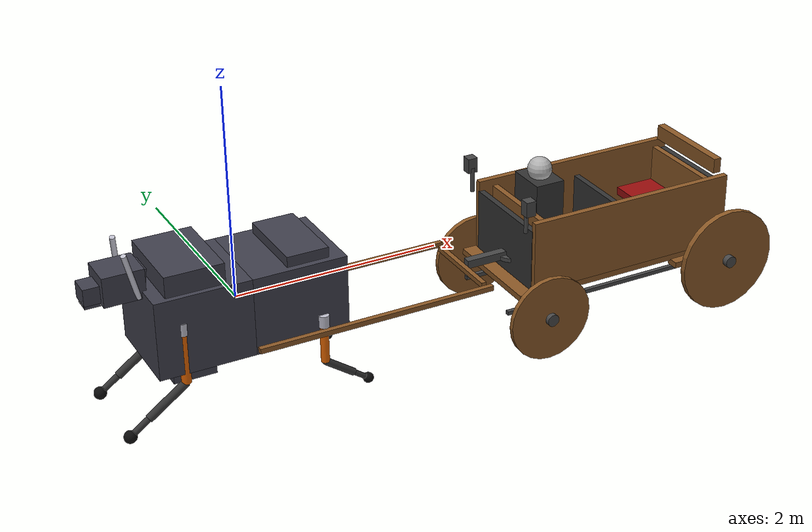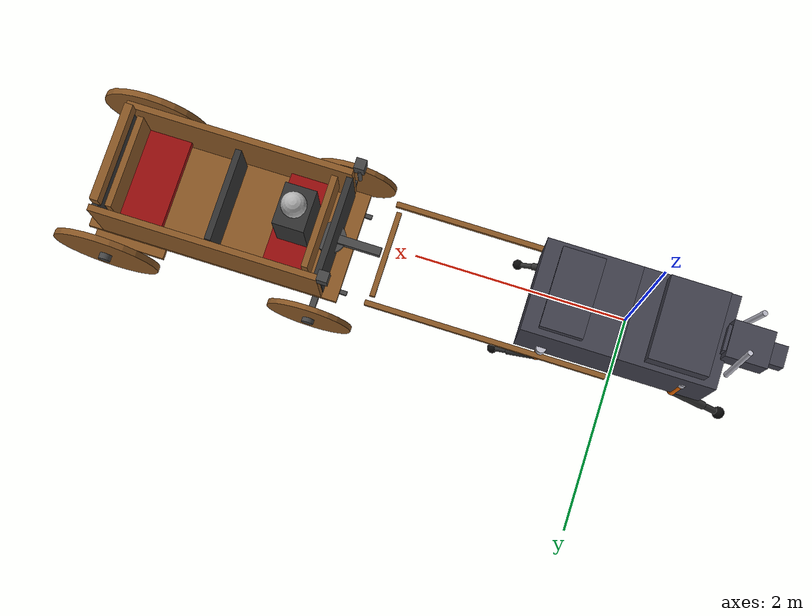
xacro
<?xml version="1.0"?>
<robot name="robotic_horse" xmlns:xacro="http://www.ros.org/wiki/xacro">

  <!-- ═══════════════════════════════════════════════════════
       MATERIALS
  ═══════════════════════════════════════════════════════ -->
  <material name="dark_grey">  <color rgba="0.20 0.20 0.20 1"/></material>
  <material name="orange">     <color rgba="0.90 0.40 0.00 1"/></material>
  <material name="light_grey"> <color rgba="0.70 0.70 0.70 1"/></material>
  <material name="black">      <color rgba="0.05 0.05 0.05 1"/></material>
  <material name="silver">     <color rgba="0.75 0.75 0.80 1"/></material>
  <material name="body_panel"> <color rgba="0.25 0.25 0.30 1"/></material>
  <material name="wood">       <color rgba="0.55 0.35 0.15 1"/></material>
  <material name="iron">       <color rgba="0.28 0.28 0.28 1"/></material>
  <material name="red_velvet"> <color rgba="0.60 0.05 0.05 1"/></material>

  <!-- IMU sensor on base_link — publishes body orientation for balance -->
  <gazebo reference="base_link">
    <sensor name="imu_sensor" type="imu">
      <always_on>true</always_on>
      <update_rate>100</update_rate>
      <topic>/imu/data</topic>
      <imu>
        <angular_velocity>
          <x><noise type="gaussian"><mean>0</mean><stddev>0.001</stddev></noise></x>
          <y><noise type="gaussian"><mean>0</mean><stddev>0.001</stddev></noise></y>
          <z><noise type="gaussian"><mean>0</mean><stddev>0.001</stddev></noise></z>
        </angular_velocity>
        <linear_acceleration>
          <x><noise type="gaussian"><mean>0</mean><stddev>0.01</stddev></noise></x>
          <y><noise type="gaussian"><mean>0</mean><stddev>0.01</stddev></noise></y>
          <z><noise type="gaussian"><mean>0</mean><stddev>0.01</stddev></noise></z>
        </linear_acceleration>
      </imu>
    </sensor>
  </gazebo>

  <!-- ═══════════════════════════════════════════════════════
       BASE LINK
  ═══════════════════════════════════════════════════════ -->
  <!-- base_link = REAR body half (haunches/lumbar).
       Rear legs (RL/RR) and carriage hitch attach here.
       IMU stays on base_link for balance sensing. -->
  <link name="base_link">
    <inertial>
      <mass value="48.0"/>
      <origin xyz="0.45 0 0" rpy="0 0 0"/>
      <inertia ixx="6.0" iyy="6.1" izz="6.3" ixy="0" ixz="0" iyz="0"/>
    </inertial>
    <!-- Rear barrel half -->
    <visual>
      <origin xyz="0.45 0 0" rpy="0 0 0"/>
      <geometry><box size="0.90 0.88 0.75"/></geometry>
      <material name="body_panel"/>
    </visual>
    <!-- Rump (back — at +X) -->
    <visual>
      <origin xyz="0.55 0 0.425" rpy="0 0 0"/>
      <geometry><box size="0.40 0.76 0.10"/></geometry>
      <material name="body_panel"/>
    </visual>

    <collision>
      <origin xyz="0.45 0 0" rpy="0 0 0"/>
      <geometry><box size="0.90 0.88 0.85"/></geometry>
    </collision>
  </link>
  <gazebo reference="base_link">
    <material>Gazebo/DarkGrey</material>
  </gazebo>

  <joint name="spine_yaw_joint" type="revolute">
    <parent link="base_link"/><child link="front_body_link"/>
    <origin xyz="0 0 0" rpy="0 0 0"/>
    <axis xyz="0 0 1"/>
    <limit lower="-0.30" upper="0.30" effort="500" velocity="1.5"/>
    <dynamics damping="12.0" friction="1.0"/>
  </joint>

  <!-- front_body_link = FRONT body half (thorax/shoulders).
       Front legs (FL/FR) and head/neck attach here.
       55% of body mass (bovine weight distribution). -->
  <link name="front_body_link">
    <inertial>
      <mass value="59.0"/>
      <origin xyz="-0.45 0 0" rpy="0 0 0"/>
      <inertia ixx="7.4" iyy="7.5" izz="7.8" ixy="0" ixz="0" iyz="0"/>
    </inertial>
    <!-- Front barrel half -->
    <visual>
      <origin xyz="-0.45 0 0" rpy="0 0 0"/>
      <geometry><box size="0.90 0.88 0.75"/></geometry>
      <material name="body_panel"/>
    </visual>
    <!-- Withers rise (front shoulder hump) -->
    <visual>
      <origin xyz="-0.50 0 0.475" rpy="0 0 0"/>
      <geometry><box size="0.55 0.78 0.20"/></geometry>
      <material name="body_panel"/>
    </visual>
    <!-- Chest extension (brisket, front-bottom) -->
    <visual>
      <origin xyz="-0.55 0 -0.435" rpy="0 0 0"/>
      <geometry><box size="0.40 0.72 0.12"/></geometry>
      <material name="body_panel"/>
    </visual>

    <collision>
      <origin xyz="-0.45 0 0" rpy="0 0 0"/>
      <geometry><box size="0.90 0.88 0.85"/></geometry>
    </collision>
  </link>
  <gazebo reference="front_body_link">
    <material>Gazebo/DarkGrey</material>
  </gazebo>

  <!-- ─── HIGHLAND COW HEAD (articulated) ───────────────────── -->
  <!-- Neck: yaw + pitch joints for head motion
       Head: jaw (open/close), eyes (left/right pan)
       Small servos — total head assembly ~6.5 kg
       Attached to front_body_link (thorax) -->

  <!-- Neck yaw — swivel left/right (head faces -X direction of travel) -->
  <link name="neck_yaw_link">
    <inertial><mass value="0.5"/><origin xyz="0 0 0" rpy="0 0 0"/>
      <inertia ixx="0.001" iyy="0.001" izz="0.001" ixy="0" ixz="0" iyz="0"/></inertial>
  </link>
  <joint name="neck_yaw_joint" type="revolute">
    <parent link="front_body_link"/><child link="neck_yaw_link"/>
    <origin xyz="-0.85 0 0.42" rpy="0 0 3.14159"/>
    <axis xyz="0 0 1"/>
    <limit lower="-0.6" upper="0.6" effort="15.0" velocity="2.0"/>
    <dynamics damping="2.0" friction="0.5"/>
  </joint>

  <!-- Neck pitch — nod up/down -->
  <link name="neck_link">
    <inertial><mass value="3.0"/><origin xyz="0.10 0 0" rpy="0 0 0"/>
      <inertia ixx="0.015" iyy="0.015" izz="0.008" ixy="0" ixz="0" iyz="0"/></inertial>
    <visual><origin xyz="0.10 0 0" rpy="0 0 0">
      </origin><geometry><box size="0.22 0.24 0.26"/></geometry><material name="body_panel"/></visual>
    <collision><origin xyz="0.10 0 0" rpy="0 0 0">
      </origin><geometry><box size="0.22 0.24 0.26"/></geometry></collision>
  </link>
  <joint name="neck_pitch_joint" type="revolute">
    <parent link="neck_yaw_link"/><child link="neck_link"/>
    <origin xyz="0 0 0" rpy="0 -0.10 0"/>
    <axis xyz="0 1 0"/>
    <limit lower="-0.5" upper="0.4" effort="20.0" velocity="2.0"/>
    <dynamics damping="3.0" friction="0.5"/>
  </joint>
  <gazebo reference="neck_link"><material>Gazebo/Brown</material></gazebo>

  <!-- Head link — skull, muzzle, nose, horns (same geometry as before) -->
  <link name="head_link">
    <inertial><mass value="2.0"/><origin xyz="0.15 0 0" rpy="0 0 0"/>
      <inertia ixx="0.016" iyy="0.018" izz="0.013" ixy="0" ixz="0" iyz="0"/></inertial>
    <!-- Skull — broad Highland Cow head -->
    <visual><origin xyz="0 0 0" rpy="0 0 0">
      </origin><geometry><box size="0.38 0.34 0.28"/></geometry><material name="body_panel"/></visual>
    <!-- Muzzle extending forward -->
    <visual><origin xyz="0.25 0 -0.04" rpy="0 0 0">
      </origin><geometry><box size="0.18 0.20 0.16"/></geometry><material name="body_panel"/></visual>
    <!-- LEFT horn: wide sweep outward + slight upward curl — iconic Highland Cow -->
    <visual><origin xyz="-0.06 0.20 0.11" rpy="0.20 0.25 1.30">
      </origin><geometry><cylinder radius="0.025" length="0.50"/></geometry><material name="silver"/></visual>
    <!-- RIGHT horn -->
    <visual><origin xyz="-0.06 -0.20 0.11" rpy="-0.20 -0.25 -1.30">
      </origin><geometry><cylinder radius="0.025" length="0.50"/></geometry><material name="silver"/></visual>
    <collision><origin xyz="0.10 0 0" rpy="0 0 0">
      </origin><geometry><box size="0.60 0.34 0.30"/></geometry></collision>
  </link>
  <joint name="head_nod_joint" type="revolute">
    <parent link="neck_link"/><child link="head_link"/>
    <origin xyz="0.20 0 0" rpy="0 0.10 0"/>
    <axis xyz="0 1 0"/>
    <limit lower="-0.3" upper="0.3" effort="8.0" velocity="3.0"/>
    <dynamics damping="1.0" friction="0.3"/>
  </joint>
  <gazebo reference="head_link"><material>Gazebo/Brown</material></gazebo>

  <!-- Jaw — opens downward (mouth) -->
  <link name="jaw_link">
    <inertial><mass value="0.3"/><origin xyz="0.06 0 -0.03" rpy="0 0 0"/>
      <inertia ixx="0.0003" iyy="0.0004" izz="0.0003" ixy="0" ixz="0" iyz="0"/></inertial>
    <visual><origin xyz="0.06 0 -0.03" rpy="0 0 0">
      </origin><geometry><box size="0.14 0.16 0.06"/></geometry><material name="body_panel"/></visual>
    <!-- Nose on jaw -->
    <visual><origin xyz="0.12 0 -0.01" rpy="0 0 0">
      </origin><geometry><box size="0.04 0.10 0.05"/></geometry><material name="black"/></visual>
    <collision><origin xyz="0.06 0 -0.03" rpy="0 0 0">
      </origin><geometry><box size="0.14 0.16 0.06"/></geometry></collision>
  </link>
  <joint name="jaw_joint" type="revolute">
    <parent link="head_link"/><child link="jaw_link"/>
    <origin xyz="0.20 0 -0.10" rpy="0 0 0"/>
    <axis xyz="0 1 0"/>
    <limit lower="-0.35" upper="0.0" effort="3.0" velocity="4.0"/>
    <dynamics damping="0.5" friction="0.1"/>
  </joint>
  <gazebo reference="jaw_link"><material>Gazebo/Brown</material></gazebo>

  <!-- Left eye -->
  <link name="left_eye_link">
    <inertial><mass value="0.05"/><origin xyz="0 0 0" rpy="0 0 0"/>
      <inertia ixx="0.00001" iyy="0.00001" izz="0.00001" ixy="0" ixz="0" iyz="0"/></inertial>
    <visual><origin xyz="0 0 0" rpy="0 0 0">
      </origin><geometry><sphere radius="0.025"/></geometry><material name="black"/></visual>
  </link>
  <joint name="left_eye_joint" type="revolute">
    <parent link="head_link"/><child link="left_eye_link"/>
    <origin xyz="0.14 0.14 0.04" rpy="0 0 0"/>
    <axis xyz="0 0 1"/>
    <limit lower="-0.4" upper="0.4" effort="1.0" velocity="5.0"/>
    <dynamics damping="0.1" friction="0.05"/>
  </joint>
  <gazebo reference="left_eye_link"><material>Gazebo/Black</material></gazebo>

  <!-- Right eye -->
  <link name="right_eye_link">
    <inertial><mass value="0.05"/><origin xyz="0 0 0" rpy="0 0 0"/>
      <inertia ixx="0.00001" iyy="0.00001" izz="0.00001" ixy="0" ixz="0" iyz="0"/></inertial>
    <visual><origin xyz="0 0 0" rpy="0 0 0">
      </origin><geometry><sphere radius="0.025"/></geometry><material name="black"/></visual>
  </link>
  <joint name="right_eye_joint" type="revolute">
    <parent link="head_link"/><child link="right_eye_link"/>
    <origin xyz="0.14 -0.14 0.04" rpy="0 0 0"/>
    <axis xyz="0 0 1"/>
    <limit lower="-0.4" upper="0.4" effort="1.0" velocity="5.0"/>
    <dynamics damping="0.1" friction="0.05"/>
  </joint>
  <gazebo reference="right_eye_link"><material>Gazebo/Black</material></gazebo>

  <!-- Left eyelid (blink) -->
  <link name="left_eyelid_link">
    <inertial><mass value="0.02"/><origin xyz="0 0 0" rpy="0 0 0"/>
      <inertia ixx="0.000001" iyy="0.000001" izz="0.000001" ixy="0" ixz="0" iyz="0"/></inertial>
    <visual><origin xyz="0.005 0 0.012" rpy="0 0 0">
      </origin><geometry><box size="0.01 0.05 0.025"/></geometry><material name="body_panel"/></visual>
  </link>
  <joint name="left_eyelid_joint" type="revolute">
    <parent link="head_link"/><child link="left_eyelid_link"/>
    <origin xyz="0.16 0.14 0.06" rpy="0 0 0"/>
    <axis xyz="0 1 0"/>
    <limit lower="-0.8" upper="0.0" effort="0.5" velocity="8.0"/>
    <dynamics damping="0.05" friction="0.02"/>
  </joint>
  <gazebo reference="left_eyelid_link"><material>Gazebo/Brown</material></gazebo>

  <!-- Right eyelid (blink) -->
  <link name="right_eyelid_link">
    <inertial><mass value="0.02"/><origin xyz="0 0 0" rpy="0 0 0"/>
      <inertia ixx="0.000001" iyy="0.000001" izz="0.000001" ixy="0" ixz="0" iyz="0"/></inertial>
    <visual><origin xyz="0.005 0 0.012" rpy="0 0 0">
      </origin><geometry><box size="0.01 0.05 0.025"/></geometry><material name="body_panel"/></visual>
  </link>
  <joint name="right_eyelid_joint" type="revolute">
    <parent link="head_link"/><child link="right_eyelid_link"/>
    <origin xyz="0.16 -0.14 0.06" rpy="0 0 0"/>
    <axis xyz="0 1 0"/>
    <limit lower="-0.8" upper="0.0" effort="0.5" velocity="8.0"/>
    <dynamics damping="0.05" friction="0.02"/>
  </joint>
  <gazebo reference="right_eyelid_link"><material>Gazebo/Brown</material></gazebo>

  <!-- ═══════════════════════════════════════════════════════
       LEG LINKS & JOINTS  (macro-expanded for FL/FR/RL/RR)
  ═══════════════════════════════════════════════════════ -->

  <!-- ── FRONT-LEFT ── -->
  <link name="fl_hip_link">
    <inertial><mass value="4.0"/><origin xyz="0 0 0" rpy="0 0 0"/>
      <inertia ixx="0.012" iyy="0.012" izz="0.007" ixy="0" ixz="0" iyz="0"/></inertial>
    <visual><origin xyz="0 0 -0.06" rpy="0 0 0"/>
      <geometry><cylinder radius="0.05" length="0.12"/></geometry><material name="silver"/></visual>
    <collision><origin xyz="0 0 -0.07" rpy="0 0 0"/>
      <geometry><cylinder radius="0.04" length="0.10"/></geometry></collision>
  </link>
  <joint name="fl_hip_joint" type="revolute">
    <parent link="front_body_link"/><child link="fl_hip_link"/>
    <origin xyz="0.65 0.44 -0.15" rpy="0 0 0"/>
    <axis xyz="0 0 1"/>
    <limit lower="-0.35" upper="0.35" effort="300" velocity="2.0"/>
    <dynamics damping="4.0" friction="0.5"/>
  </joint>
  <gazebo reference="fl_hip_link"><material>Gazebo/Grey</material></gazebo>

  <link name="fl_thigh_link">
    <inertial><mass value="4.0"/><origin xyz="0 0 -0.19" rpy="0 0 0"/>
      <inertia ixx="0.0496" iyy="0.0496" izz="0.0032" ixy="0" ixz="0" iyz="0"/></inertial>
    <visual><origin xyz="0 0 -0.19" rpy="0 0 0"/>
      <geometry><cylinder radius="0.04" length="0.38"/></geometry><material name="orange"/></visual>
    <collision><origin xyz="0 0 -0.19" rpy="0 0 0">
      </origin><geometry><cylinder radius="0.04" length="0.38"/></geometry></collision>
  </link>
  <joint name="fl_thigh_joint" type="revolute">
    <parent link="fl_hip_link"/><child link="fl_thigh_link"/>
    <origin xyz="0 0 -0.10" rpy="0 0 0"/><axis xyz="0 1 0"/>
    <limit lower="-0.30" upper="1.20" effort="800" velocity="3.0"/>
    <dynamics damping="5.0" friction="0.5"/>
  </joint>
  <gazebo reference="fl_thigh_link"><material>Gazebo/Orange</material></gazebo>

  <link name="fl_shank_link">
    <inertial><mass value="3.5"/><origin xyz="0 0 -0.17" rpy="0 0 0"/>
      <inertia ixx="0.0348" iyy="0.0348" izz="0.0021" ixy="0" ixz="0" iyz="0"/></inertial>
    <visual><origin xyz="0 0 -0.17" rpy="0 0 0">
      </origin><geometry><cylinder radius="0.035" length="0.34"/></geometry><material name="dark_grey"/></visual>
    <collision><origin xyz="0 0 -0.17" rpy="0 0 0">
      </origin><geometry><cylinder radius="0.035" length="0.34"/></geometry></collision>
  </link>
  <joint name="fl_knee_joint" type="revolute">
    <parent link="fl_thigh_link"/><child link="fl_shank_link"/>
    <origin xyz="0 0 -0.38" rpy="0 0 0"/><axis xyz="0 1 0"/>
    <limit lower="-1.80" upper="-0.10" effort="1200" velocity="5.0"/>
    <dynamics damping="6.0" friction="0.5"/>
  </joint>
  <gazebo reference="fl_shank_link"><material>Gazebo/DarkGrey</material></gazebo>

  <!-- Cannon bone (metatarsal/metacarpal): pantograph-kept near vertical -->
  <link name="fl_cannon_link">
    <inertial><mass value="1.0"/><origin xyz="0 0 -0.09" rpy="0 0 0"/>
      <inertia ixx="0.0028" iyy="0.0028" izz="0.0003" ixy="0" ixz="0" iyz="0"/></inertial>
    <visual><origin xyz="0 0 -0.09" rpy="0 0 0"/>
      <geometry><cylinder radius="0.025" length="0.18"/></geometry><material name="dark_grey"/></visual>
    <collision><origin xyz="0 0 -0.09" rpy="0 0 0"/>
      <geometry><cylinder radius="0.025" length="0.18"/></geometry></collision>
  </link>
  <joint name="fl_cannon_joint" type="revolute">
    <parent link="fl_shank_link"/><child link="fl_cannon_link"/>
    <origin xyz="0 0 -0.34" rpy="0 0 0"/><axis xyz="0 1 0"/>
    <limit lower="-2.0" upper="2.0" effort="200" velocity="6.0"/>
    <dynamics damping="2.0" friction="0.2"/>
  </joint>
  <gazebo reference="fl_cannon_link"><material>Gazebo/DarkGrey</material></gazebo>

    <link name="fl_foot_link">
    <inertial><mass value="0.4"/><origin xyz="0 0 0" rpy="0 0 0"/>
      <inertia ixx="0.00040" iyy="0.00040" izz="0.00040" ixy="0" ixz="0" iyz="0"/></inertial>
    <visual><origin xyz="0 0 0" rpy="0 0 0"/>
      <geometry><sphere radius="0.05"/></geometry><material name="black"/></visual>
    <collision><origin xyz="0 0 0" rpy="0 0 0"/>
      <geometry><sphere radius="0.05"/></geometry></collision>
  </link>
  <joint name="fl_foot_joint" type="fixed">
    <parent link="fl_cannon_link"/><child link="fl_foot_link"/>
    <origin xyz="0 0 -0.18" rpy="0 0 0"/>
  </joint>
  <gazebo reference="fl_foot_link">
    <material>Gazebo/FlatBlack</material>
    <kp>1000000.0</kp><kd>200.0</kd>
    <mu1>2.0</mu1><mu2>2.0</mu2>
    <minDepth>0.005</minDepth>
  </gazebo>

  <!-- ── FRONT-RIGHT ── -->
  <link name="fr_hip_link">
    <inertial><mass value="4.0"/><origin xyz="0 0 0" rpy="0 0 0"/>
      <inertia ixx="0.012" iyy="0.012" izz="0.007" ixy="0" ixz="0" iyz="0"/></inertial>
    <visual><origin xyz="0 0 -0.06" rpy="0 0 0"/>
      <geometry><cylinder radius="0.05" length="0.12"/></geometry><material name="silver"/></visual>
    <collision><origin xyz="0 0 -0.05" rpy="0 0 0">
      </origin><geometry><cylinder radius="0.04" length="0.10"/></geometry></collision>
  </link>
  <joint name="fr_hip_joint" type="revolute">
    <parent link="front_body_link"/><child link="fr_hip_link"/>
    <origin xyz="0.65 -0.44 -0.15" rpy="0 0 0"/>
    <axis xyz="0 0 1"/>
    <limit lower="-0.35" upper="0.35" effort="300" velocity="2.0"/>
    <dynamics damping="4.0" friction="0.5"/>
  </joint>
  <gazebo reference="fr_hip_link"><material>Gazebo/Grey</material></gazebo>
  <link name="fr_thigh_link">
    <inertial><mass value="4.0"/><origin xyz="0 0 -0.19" rpy="0 0 0"/>
      <inertia ixx="0.0496" iyy="0.0496" izz="0.0032" ixy="0" ixz="0" iyz="0"/></inertial>
    <visual><origin xyz="0 0 -0.19" rpy="0 0 0"/>
      <geometry><cylinder radius="0.04" length="0.38"/></geometry><material name="orange"/></visual>
    <collision><origin xyz="0 0 -0.19" rpy="0 0 0">
      </origin><geometry><cylinder radius="0.04" length="0.38"/></geometry></collision>
  </link>
  <joint name="fr_thigh_joint" type="revolute">
    <parent link="fr_hip_link"/><child link="fr_thigh_link"/>
    <origin xyz="0 0 -0.10" rpy="0 0 0"/><axis xyz="0 1 0"/>
    <limit lower="-0.30" upper="1.20" effort="800" velocity="3.0"/>
    <dynamics damping="5.0" friction="0.5"/>
  </joint>
  <gazebo reference="fr_thigh_link"><material>Gazebo/Orange</material></gazebo>
  <link name="fr_shank_link">
    <inertial><mass value="3.5"/><origin xyz="0 0 -0.17" rpy="0 0 0"/>
      <inertia ixx="0.0348" iyy="0.0348" izz="0.0021" ixy="0" ixz="0" iyz="0"/></inertial>
    <visual><origin xyz="0 0 -0.17" rpy="0 0 0">
      </origin><geometry><cylinder radius="0.035" length="0.34"/></geometry><material name="dark_grey"/></visual>
    <collision><origin xyz="0 0 -0.17" rpy="0 0 0">
      </origin><geometry><cylinder radius="0.035" length="0.34"/></geometry></collision>
  </link>
  <joint name="fr_knee_joint" type="revolute">
    <parent link="fr_thigh_link"/><child link="fr_shank_link"/>
    <origin xyz="0 0 -0.38" rpy="0 0 0"/><axis xyz="0 1 0"/>
    <limit lower="-1.80" upper="-0.10" effort="1200" velocity="5.0"/>
    <dynamics damping="6.0" friction="0.5"/>
  </joint>
  <gazebo reference="fr_shank_link"><material>Gazebo/DarkGrey</material></gazebo>
  <!-- Cannon bone (metatarsal/metacarpal): pantograph-kept near vertical -->
  <link name="fr_cannon_link">
    <inertial><mass value="1.0"/><origin xyz="0 0 -0.09" rpy="0 0 0"/>
      <inertia ixx="0.0028" iyy="0.0028" izz="0.0003" ixy="0" ixz="0" iyz="0"/></inertial>
    <visual><origin xyz="0 0 -0.09" rpy="0 0 0"/>
      <geometry><cylinder radius="0.025" length="0.18"/></geometry><material name="dark_grey"/></visual>
    <collision><origin xyz="0 0 -0.09" rpy="0 0 0"/>
      <geometry><cylinder radius="0.025" length="0.18"/></geometry></collision>
  </link>
  <joint name="fr_cannon_joint" type="revolute">
    <parent link="fr_shank_link"/><child link="fr_cannon_link"/>
    <origin xyz="0 0 -0.34" rpy="0 0 0"/><axis xyz="0 1 0"/>
    <limit lower="-2.0" upper="2.0" effort="200" velocity="6.0"/>
    <dynamics damping="2.0" friction="0.2"/>
  </joint>
  <gazebo reference="fr_cannon_link"><material>Gazebo/DarkGrey</material></gazebo>

    <link name="fr_foot_link">
    <inertial><mass value="0.4"/><origin xyz="0 0 0" rpy="0 0 0"/>
      <inertia ixx="0.00040" iyy="0.00040" izz="0.00040" ixy="0" ixz="0" iyz="0"/></inertial>
    <visual><origin xyz="0 0 0" rpy="0 0 0"/>
      <geometry><sphere radius="0.05"/></geometry><material name="black"/></visual>
    <collision><origin xyz="0 0 0" rpy="0 0 0"/>
      <geometry><sphere radius="0.05"/></geometry></collision>
  </link>
  <joint name="fr_foot_joint" type="fixed">
    <parent link="fr_cannon_link"/><child link="fr_foot_link"/>
    <origin xyz="0 0 -0.18" rpy="0 0 0"/>
  </joint>
  <gazebo reference="fr_foot_link">
    <material>Gazebo/FlatBlack</material>
    <kp>1000000.0</kp><kd>200.0</kd>
    <mu1>2.0</mu1><mu2>2.0</mu2>
    <minDepth>0.005</minDepth>
  </gazebo>

  <!-- ── REAR-LEFT ── -->
  <link name="rl_hip_link">
    <inertial><mass value="4.0"/><origin xyz="0 0 0" rpy="0 0 0"/>
      <inertia ixx="0.012" iyy="0.012" izz="0.007" ixy="0" ixz="0" iyz="0"/></inertial>
    <visual><origin xyz="0 0 -0.06" rpy="0 0 0"/>
      <geometry><cylinder radius="0.05" length="0.12"/></geometry><material name="silver"/></visual>
    <collision><origin xyz="0 0 -0.05" rpy="0 0 0">
      </origin><geometry><cylinder radius="0.04" length="0.10"/></geometry></collision>
  </link>
  <joint name="rl_hip_joint" type="revolute">
    <parent link="base_link"/><child link="rl_hip_link"/>
    <origin xyz="-0.65 0.40 0.12" rpy="0 0 0"/>
    <axis xyz="0 0 1"/>
    <limit lower="-0.35" upper="0.35" effort="250" velocity="2.0"/>
    <dynamics damping="3.5" friction="0.4"/>
  </joint>
  <gazebo reference="rl_hip_link"><material>Gazebo/Grey</material></gazebo>
  <link name="rl_thigh_link">
    <inertial><mass value="5.0"/><origin xyz="0 0 -0.25" rpy="0 0 0"/>
      <inertia ixx="0.1068" iyy="0.1068" izz="0.0051" ixy="0" ixz="0" iyz="0"/></inertial>
    <visual><origin xyz="0 0 -0.25" rpy="0 0 0">
      </origin><geometry><cylinder radius="0.045" length="0.50"/></geometry><material name="orange"/></visual>
    <collision><origin xyz="0 0 -0.25" rpy="0 0 0">
      </origin><geometry><cylinder radius="0.045" length="0.50"/></geometry></collision>
  </link>
  <joint name="rl_thigh_joint" type="revolute">
    <parent link="rl_hip_link"/><child link="rl_thigh_link"/>
    <origin xyz="0 0 -0.10" rpy="0 0 0"/><axis xyz="0 1 0"/>
    <limit lower="-1.20" upper="0.30" effort="700" velocity="3.0"/>
    <dynamics damping="4.5" friction="0.4"/>
  </joint>
  <gazebo reference="rl_thigh_link"><material>Gazebo/Orange</material></gazebo>
  <link name="rl_shank_link">
    <inertial><mass value="4.0"/><origin xyz="0 0 -0.225" rpy="0 0 0"/>
      <inertia ixx="0.0695" iyy="0.0695" izz="0.0032" ixy="0" ixz="0" iyz="0"/></inertial>
    <visual><origin xyz="0 0 -0.225" rpy="0 0 0">
      </origin><geometry><cylinder radius="0.04" length="0.45"/></geometry><material name="dark_grey"/></visual>
    <collision><origin xyz="0 0 -0.225" rpy="0 0 0">
      </origin><geometry><cylinder radius="0.04" length="0.45"/></geometry></collision>
  </link>
  <joint name="rl_knee_joint" type="revolute">
    <parent link="rl_thigh_link"/><child link="rl_shank_link"/>
    <origin xyz="0 0 -0.50" rpy="0 0 0"/><axis xyz="0 1 0"/>
    <limit lower="0.10" upper="1.80" effort="1000" velocity="5.0"/>
    <dynamics damping="5.0" friction="0.4"/>
  </joint>
  <gazebo reference="rl_shank_link"><material>Gazebo/DarkGrey</material></gazebo>
  <!-- Cannon bone (metatarsal/metacarpal): pantograph-kept near vertical -->
  <link name="rl_cannon_link">
    <inertial><mass value="1.2"/><origin xyz="0 0 -0.11" rpy="0 0 0"/>
      <inertia ixx="0.0049" iyy="0.0049" izz="0.0005" ixy="0" ixz="0" iyz="0"/></inertial>
    <visual><origin xyz="0 0 -0.11" rpy="0 0 0"/>
      <geometry><cylinder radius="0.03" length="0.22"/></geometry><material name="dark_grey"/></visual>
    <collision><origin xyz="0 0 -0.11" rpy="0 0 0"/>
      <geometry><cylinder radius="0.03" length="0.22"/></geometry></collision>
  </link>
  <joint name="rl_cannon_joint" type="revolute">
    <parent link="rl_shank_link"/><child link="rl_cannon_link"/>
    <origin xyz="0 0 -0.45" rpy="0 0 0"/><axis xyz="0 1 0"/>
    <limit lower="-2.0" upper="2.0" effort="150" velocity="6.0"/>
    <dynamics damping="1.5" friction="0.2"/>
  </joint>
  <gazebo reference="rl_cannon_link"><material>Gazebo/DarkGrey</material></gazebo>

    <link name="rl_foot_link">
    <inertial><mass value="0.5"/><origin xyz="0 0 0" rpy="0 0 0"/>
      <inertia ixx="0.00072" iyy="0.00072" izz="0.00072" ixy="0" ixz="0" iyz="0"/></inertial>
    <visual><origin xyz="0 0 0" rpy="0 0 0"/>
      <geometry><sphere radius="0.06"/></geometry><material name="black"/></visual>
    <collision><origin xyz="0 0 0" rpy="0 0 0"/>
      <geometry><sphere radius="0.06"/></geometry></collision>
  </link>
  <joint name="rl_foot_joint" type="fixed">
    <parent link="rl_cannon_link"/><child link="rl_foot_link"/>
    <origin xyz="0 0 -0.22" rpy="0 0 0"/>
  </joint>
  <gazebo reference="rl_foot_link">
    <material>Gazebo/FlatBlack</material>
    <kp>1000000.0</kp><kd>200.0</kd>
    <mu1>2.0</mu1><mu2>2.0</mu2>
    <minDepth>0.005</minDepth>
  </gazebo>

  <!-- ── REAR-RIGHT ── -->
  <link name="rr_hip_link">
    <inertial><mass value="4.0"/><origin xyz="0 0 0" rpy="0 0 0"/>
      <inertia ixx="0.012" iyy="0.012" izz="0.007" ixy="0" ixz="0" iyz="0"/></inertial>
    <visual><origin xyz="0 0 -0.06" rpy="0 0 0"/>
      <geometry><cylinder radius="0.05" length="0.12"/></geometry><material name="silver"/></visual>
    <collision><origin xyz="0 0 -0.05" rpy="0 0 0">
      </origin><geometry><cylinder radius="0.04" length="0.10"/></geometry></collision>
  </link>
  <joint name="rr_hip_joint" type="revolute">
    <parent link="base_link"/><child link="rr_hip_link"/>
    <origin xyz="-0.65 -0.40 0.12" rpy="0 0 0"/>
    <axis xyz="0 0 1"/>
    <limit lower="-0.35" upper="0.35" effort="250" velocity="2.0"/>
    <dynamics damping="3.5" friction="0.4"/>
  </joint>
  <gazebo reference="rr_hip_link"><material>Gazebo/Grey</material></gazebo>
  <link name="rr_thigh_link">
    <inertial><mass value="5.0"/><origin xyz="0 0 -0.25" rpy="0 0 0"/>
      <inertia ixx="0.1068" iyy="0.1068" izz="0.0051" ixy="0" ixz="0" iyz="0"/></inertial>
    <visual><origin xyz="0 0 -0.25" rpy="0 0 0">
      </origin><geometry><cylinder radius="0.045" length="0.50"/></geometry><material name="orange"/></visual>
    <collision><origin xyz="0 0 -0.25" rpy="0 0 0">
      </origin><geometry><cylinder radius="0.045" length="0.50"/></geometry></collision>
  </link>
  <joint name="rr_thigh_joint" type="revolute">
    <parent link="rr_hip_link"/><child link="rr_thigh_link"/>
    <origin xyz="0 0 -0.10" rpy="0 0 0"/><axis xyz="0 1 0"/>
    <limit lower="-1.20" upper="0.30" effort="700" velocity="3.0"/>
    <dynamics damping="4.5" friction="0.4"/>
  </joint>
  <gazebo reference="rr_thigh_link"><material>Gazebo/Orange</material></gazebo>
  <link name="rr_shank_link">
    <inertial><mass value="4.0"/><origin xyz="0 0 -0.225" rpy="0 0 0"/>
      <inertia ixx="0.0695" iyy="0.0695" izz="0.0032" ixy="0" ixz="0" iyz="0"/></inertial>
    <visual><origin xyz="0 0 -0.225" rpy="0 0 0">
      </origin><geometry><cylinder radius="0.04" length="0.45"/></geometry><material name="dark_grey"/></visual>
    <collision><origin xyz="0 0 -0.225" rpy="0 0 0">
      </origin><geometry><cylinder radius="0.04" length="0.45"/></geometry></collision>
  </link>
  <joint name="rr_knee_joint" type="revolute">
    <parent link="rr_thigh_link"/><child link="rr_shank_link"/>
    <origin xyz="0 0 -0.50" rpy="0 0 0"/><axis xyz="0 1 0"/>
    <limit lower="0.10" upper="1.80" effort="1000" velocity="5.0"/>
    <dynamics damping="5.0" friction="0.4"/>
  </joint>
  <gazebo reference="rr_shank_link"><material>Gazebo/DarkGrey</material></gazebo>
  <!-- Cannon bone (metatarsal/metacarpal): pantograph-kept near vertical -->
  <link name="rr_cannon_link">
    <inertial><mass value="1.2"/><origin xyz="0 0 -0.11" rpy="0 0 0"/>
      <inertia ixx="0.0049" iyy="0.0049" izz="0.0005" ixy="0" ixz="0" iyz="0"/></inertial>
    <visual><origin xyz="0 0 -0.11" rpy="0 0 0"/>
      <geometry><cylinder radius="0.03" length="0.22"/></geometry><material name="dark_grey"/></visual>
    <collision><origin xyz="0 0 -0.11" rpy="0 0 0"/>
      <geometry><cylinder radius="0.03" length="0.22"/></geometry></collision>
  </link>
  <joint name="rr_cannon_joint" type="revolute">
    <parent link="rr_shank_link"/><child link="rr_cannon_link"/>
    <origin xyz="0 0 -0.45" rpy="0 0 0"/><axis xyz="0 1 0"/>
    <limit lower="-2.0" upper="2.0" effort="150" velocity="6.0"/>
    <dynamics damping="1.5" friction="0.2"/>
  </joint>
  <gazebo reference="rr_cannon_link"><material>Gazebo/DarkGrey</material></gazebo>

    <link name="rr_foot_link">
    <inertial><mass value="0.5"/><origin xyz="0 0 0" rpy="0 0 0"/>
      <inertia ixx="0.00072" iyy="0.00072" izz="0.00072" ixy="0" ixz="0" iyz="0"/></inertial>
    <visual><origin xyz="0 0 0" rpy="0 0 0"/>
      <geometry><sphere radius="0.06"/></geometry><material name="black"/></visual>
    <collision><origin xyz="0 0 0" rpy="0 0 0"/>
      <geometry><sphere radius="0.06"/></geometry></collision>
  </link>
  <joint name="rr_foot_joint" type="fixed">
    <parent link="rr_cannon_link"/><child link="rr_foot_link"/>
    <origin xyz="0 0 -0.22" rpy="0 0 0"/>
  </joint>
  <gazebo reference="rr_foot_link">
    <material>Gazebo/FlatBlack</material>
    <kp>1000000.0</kp><kd>200.0</kd>
    <mu1>2.0</mu1><mu2>2.0</mu2>
    <minDepth>0.005</minDepth>
  </gazebo>

  <!-- Cow-side hitch — pitch only (up/down in forward direction)
       Like a real carriage hitch pivot: shaft can tilt up/down but
       does not yaw or roll relative to the cow body. -->
  <joint name="cow_hitch_pitch_joint" type="revolute">
    <parent link="base_link"/><child link="shaft_link"/>
    <origin xyz="0.0 0 -0.30" rpy="0 0 0"/>
    <axis xyz="0 1 0"/>
    <limit lower="-0.35" upper="0.35" effort="0" velocity="2.0"/>
    <dynamics damping="1.0" friction="0.1"/>
  </joint>

  <!-- Shaft — U-shaped wooden fork, 2.35m long, extending in +X (behind robot)
       Bars at ±0.50m (1.0m apart) to clear 0.88m body width -->
  <link name="shaft_link">
    <inertial><mass value="15.0"/><origin xyz="1.175 0 0" rpy="0 0 0"/>
      <inertia ixx="0.15" iyy="6.93" izz="7.00" ixy="0" ixz="0" iyz="0"/></inertial>
    <!-- Left shaft bar -->
    <visual><origin xyz="1.175 0.50 0" rpy="0 0 0"/>
      <geometry><box size="2.35 0.05 0.05"/></geometry><material name="wood"/></visual>
    <collision><origin xyz="1.175 0.50 0" rpy="0 0 0"/>
      <geometry><box size="2.35 0.05 0.05"/></geometry></collision>
    <!-- Right shaft bar -->
    <visual><origin xyz="1.175 -0.50 0" rpy="0 0 0"/>
      <geometry><box size="2.35 0.05 0.05"/></geometry><material name="wood"/></visual>
    <collision><origin xyz="1.175 -0.50 0" rpy="0 0 0"/>
      <geometry><box size="2.35 0.05 0.05"/></geometry></collision>
    <!-- Cross piece at carriage end (tapers to ~0.85m) -->
    <visual><origin xyz="2.30 0 0" rpy="0 0 0"/>
      <geometry><box size="0.05 0.85 0.05"/></geometry><material name="wood"/></visual>
    <collision><origin xyz="2.30 0 0" rpy="0 0 0"/>
      <geometry><box size="0.05 0.85 0.05"/></geometry></collision>
  </link>

  <!-- Perch pitch joint — pivot at front of front axle assembly
       Moderate damping: allows free pitch motion over bumps without oscillation. -->
  <joint name="perch_pitch_joint" type="revolute">
    <parent link="shaft_link"/><child link="front_assembly_link"/>
    <origin xyz="2.35 0 0.015" rpy="0 0 0"/>
    <axis xyz="0 1 0"/>
    <limit lower="-0.35" upper="0.35" effort="0" velocity="2.0"/>
    <dynamics damping="1.5" friction="0.2"/>
  </joint>

  <!-- Front assembly (perch beam + front axle + turntable pin) ~8 kg -->
  <link name="front_assembly_link">
    <inertial><mass value="8.0"/><origin xyz="0.25 0 -0.15" rpy="0 0 0"/>
      <inertia ixx="0.20" iyy="0.10" izz="0.25" ixy="0" ixz="0" iyz="0"/></inertial>
    <!-- Perch beam (shaft-to-axle connection) -->
    <visual><origin xyz="0.25 0 0" rpy="0 0 0"/>
      <geometry><box size="0.50 0.08 0.08"/></geometry><material name="iron"/></visual>
    <collision><origin xyz="0.25 0 0" rpy="0 0 0"/>
      <geometry><box size="0.50 0.08 0.08"/></geometry></collision>
    <!-- Front axle bar -->
    <visual><origin xyz="0.50 0 -0.37" rpy="0 0 0"/>
      <geometry><box size="0.06 1.40 0.06"/></geometry><material name="iron"/></visual>
    <collision><origin xyz="0.50 0 -0.37" rpy="0 0 0"/>
      <geometry><box size="0.06 1.40 0.06"/></geometry></collision>
    <!-- Turntable circle (fifth-wheel plate) -->
    <visual><origin xyz="0.50 0 -0.02" rpy="0 0 0"/>
      <geometry><cylinder radius="0.15" length="0.04"/></geometry><material name="iron"/></visual>
    <collision><origin xyz="0.50 0 -0.02" rpy="0 0 0"/>
      <geometry><cylinder radius="0.15" length="0.04"/></geometry></collision>
  </link>

  <!-- ── Front-Left Wheel (⌀85cm) — on front assembly ── -->
  <joint name="cart_fl_wheel_joint" type="continuous">
    <parent link="front_assembly_link"/><child link="cart_fl_wheel_link"/>
    <origin xyz="0.50 0.725 -0.37" rpy="0 0 0"/>
    <axis xyz="0 1 0"/>
    <dynamics damping="0.5" friction="0.1"/>
  </joint>
  <link name="cart_fl_wheel_link">
    <inertial><mass value="4.0"/><origin xyz="0 0 0" rpy="0 0 0"/>
      <inertia ixx="0.091" iyy="0.181" izz="0.091" ixy="0" ixz="0" iyz="0"/></inertial>
    <visual><origin xyz="0 0 0" rpy="1.5708 0 0"/>
      <geometry><cylinder radius="0.425" length="0.05"/></geometry><material name="wood"/></visual>
    <collision><origin xyz="0 0 0" rpy="1.5708 0 0"/>
      <geometry><cylinder radius="0.425" length="0.05"/></geometry></collision>
    <!-- Wheel hub -->
    <visual><origin xyz="0 0.03 0" rpy="1.5708 0 0"/>
      <geometry><cylinder radius="0.06" length="0.08"/></geometry><material name="iron"/></visual>
  </link>

  <!-- ── Front-Right Wheel (⌀85cm) — on front assembly ── -->
  <joint name="cart_fr_wheel_joint" type="continuous">
    <parent link="front_assembly_link"/><child link="cart_fr_wheel_link"/>
    <origin xyz="0.50 -0.725 -0.37" rpy="0 0 0"/>
    <axis xyz="0 1 0"/>
    <dynamics damping="0.5" friction="0.1"/>
  </joint>
  <link name="cart_fr_wheel_link">
    <inertial><mass value="4.0"/><origin xyz="0 0 0" rpy="0 0 0"/>
      <inertia ixx="0.091" iyy="0.181" izz="0.091" ixy="0" ixz="0" iyz="0"/></inertial>
    <visual><origin xyz="0 0 0" rpy="1.5708 0 0"/>
      <geometry><cylinder radius="0.425" length="0.05"/></geometry><material name="wood"/></visual>
    <collision><origin xyz="0 0 0" rpy="1.5708 0 0"/>
      <geometry><cylinder radius="0.425" length="0.05"/></geometry></collision>
    <visual><origin xyz="0 -0.03 0" rpy="1.5708 0 0"/>
      <geometry><cylinder radius="0.06" length="0.08"/></geometry><material name="iron"/></visual>
  </link>

  <joint name="turntable_yaw_joint" type="revolute">
    <parent link="front_assembly_link"/><child link="cart_body_link"/>
    <origin xyz="0.50 0 0" rpy="0 0 0"/>
    <axis xyz="0 0 1"/>
    <limit lower="-0.785" upper="0.785" effort="0" velocity="2.0"/>
    <dynamics damping="4.0" friction="0.3"/>
  </joint>

  <link name="cart_body_link">
    <!-- Combined inertia: carriage structure 55 kg + driver 85 kg = 140 kg
         COM shifted down to match lowered body position -->
    <inertial><mass value="140.0"/><origin xyz="0.90 0 0.07" rpy="0 0 0"/>
      <inertia ixx="25.0" iyy="95.0" izz="85.0" ixy="0" ixz="0" iyz="0"/></inertial>

    <!-- Main body floor/deck — abs z ≈ 0.60m -->
    <visual><origin xyz="1.025 0 -0.195" rpy="0 0 0"/>
      <geometry><box size="2.50 1.10 0.06"/></geometry><material name="wood"/></visual>
    <collision><origin xyz="1.025 0 -0.195" rpy="0 0 0"/>
      <geometry><box size="2.50 1.10 0.06"/></geometry></collision>

    <!-- Left side panel -->
    <visual><origin xyz="1.025 0.52 0.195" rpy="0 0 0"/>
      <geometry><box size="2.20 0.06 0.72"/></geometry><material name="wood"/></visual>
    <collision><origin xyz="1.025 0.52 0.195" rpy="0 0 0"/>
      <geometry><box size="2.20 0.06 0.72"/></geometry></collision>

    <!-- Right side panel -->
    <visual><origin xyz="1.025 -0.52 0.195" rpy="0 0 0"/>
      <geometry><box size="2.20 0.06 0.72"/></geometry><material name="wood"/></visual>
    <collision><origin xyz="1.025 -0.52 0.195" rpy="0 0 0"/>
      <geometry><box size="2.20 0.06 0.72"/></geometry></collision>

    <!-- Front panel (cow side, kick board) -->
    <visual><origin xyz="-0.05 0 0.145" rpy="0 0 0"/>
      <geometry><box size="0.06 1.00 0.62"/></geometry><material name="dark_grey"/></visual>

    <!-- Rear panel -->
    <visual><origin xyz="2.10 0 0.145" rpy="0 0 0"/>
      <geometry><box size="0.06 1.00 0.62"/></geometry><material name="dark_grey"/></visual>

    <!-- Center divider panel -->
    <visual><origin xyz="1.025 0 0.145" rpy="0 0 0"/>
      <geometry><box size="0.06 0.90 0.50"/></geometry><material name="dark_grey"/></visual>

    <!-- Front bench seat (driver side, closest to cow) -->
    <visual><origin xyz="0.30 0 0.105" rpy="0 0 0"/>
      <geometry><box size="0.45 0.90 0.08"/></geometry><material name="red_velvet"/></visual>
    <!-- Front seat backrest -->
    <visual><origin xyz="0.08 0 0.325" rpy="0 0 0"/>
      <geometry><box size="0.06 0.90 0.36"/></geometry><material name="wood"/></visual>

    <!-- Rear bench seat -->
    <visual><origin xyz="1.75 0 0.105" rpy="0 0 0"/>
      <geometry><box size="0.45 0.90 0.08"/></geometry><material name="red_velvet"/></visual>
    <!-- Rear seat backrest -->
    <visual><origin xyz="1.97 0 0.325" rpy="0 0 0"/>
      <geometry><box size="0.06 0.90 0.36"/></geometry><material name="wood"/></visual>

    <!-- Driver figure (85 kg, seated on front bench) -->
    <!-- Torso -->
    <visual><origin xyz="0.30 0 0.465" rpy="0 0 0"/>
      <geometry><box size="0.30 0.40 0.55"/></geometry><material name="dark_grey"/></visual>
    <!-- Head -->
    <visual><origin xyz="0.30 0 0.815" rpy="0 0 0"/>
      <geometry><sphere radius="0.12"/></geometry><material name="light_grey"/></visual>

    <!-- Left mudguard / fender (over rear wheels) -->
    <visual><origin xyz="1.85 0.58 -0.245" rpy="0 0 0"/>
      <geometry><box size="0.70 0.12 0.06"/></geometry><material name="wood"/></visual>
    <!-- Right mudguard -->
    <visual><origin xyz="1.85 -0.58 -0.245" rpy="0 0 0"/>
      <geometry><box size="0.70 0.12 0.06"/></geometry><material name="wood"/></visual>

    <!-- Iron underframe / chassis rail (left) -->
    <visual><origin xyz="1.025 0.40 -0.405" rpy="0 0 0"/>
      <geometry><box size="2.60 0.04 0.04"/></geometry><material name="iron"/></visual>
    <!-- Iron underframe / chassis rail (right) -->
    <visual><origin xyz="1.025 -0.40 -0.405" rpy="0 0 0"/>
      <geometry><box size="2.60 0.04 0.04"/></geometry><material name="iron"/></visual>

    <!-- Left carriage lamp bracket -->
    <visual><origin xyz="-0.15 0.50 0.595" rpy="0 0 0"/>
      <geometry><cylinder radius="0.02" length="0.25"/></geometry><material name="iron"/></visual>
    <!-- Left lamp housing -->
    <visual><origin xyz="-0.15 0.54 0.745" rpy="0 0 0"/>
      <geometry><box size="0.10 0.10 0.15"/></geometry><material name="iron"/></visual>
    <!-- Right carriage lamp bracket -->
    <visual><origin xyz="-0.15 -0.50 0.595" rpy="0 0 0"/>
      <geometry><cylinder radius="0.02" length="0.25"/></geometry><material name="iron"/></visual>
    <!-- Right lamp housing -->
    <visual><origin xyz="-0.15 -0.54 0.745" rpy="0 0 0"/>
      <geometry><box size="0.10 0.10 0.15"/></geometry><material name="iron"/></visual>

    <!-- Folding hood frame (rear, collapsed) -->
    <visual><origin xyz="2.05 0 0.645" rpy="0 0 0"/>
      <geometry><box size="0.08 0.95 0.15"/></geometry><material name="wood"/></visual>
  </link>

  <!-- ── Rear axle (fixed to cart body) ── -->
  <joint name="rear_axle_joint" type="fixed">
    <parent link="cart_body_link"/><child link="rear_axle_link"/>
    <origin xyz="2.05 0 -0.27" rpy="0 0 0"/>
  </joint>
  <link name="rear_axle_link">
    <inertial><mass value="6.0"/><origin xyz="0 0 0" rpy="0 0 0"/>
      <inertia ixx="0.53" iyy="0.003" izz="0.53" ixy="0" ixz="0" iyz="0"/></inertial>
    <visual><origin xyz="0 0 0" rpy="0 0 0"/>
      <geometry><box size="0.06 1.40 0.06"/></geometry><material name="iron"/></visual>
    <collision><origin xyz="0 0 0" rpy="0 0 0"/>
      <geometry><box size="0.06 1.40 0.06"/></geometry></collision>
  </link>

  <!-- ── Rear-Left Wheel (⌀105cm) ── -->
  <joint name="cart_rl_wheel_joint" type="continuous">
    <parent link="rear_axle_link"/><child link="cart_rl_wheel_link"/>
    <origin xyz="0 0.725 0" rpy="0 0 0"/>
    <axis xyz="0 1 0"/>
    <dynamics damping="0.5" friction="0.1"/>
  </joint>
  <link name="cart_rl_wheel_link">
    <inertial><mass value="5.0"/><origin xyz="0 0 0" rpy="0 0 0"/>
      <inertia ixx="0.174" iyy="0.345" izz="0.174" ixy="0" ixz="0" iyz="0"/></inertial>
    <visual><origin xyz="0 0 0" rpy="1.5708 0 0"/>
      <geometry><cylinder radius="0.525" length="0.06"/></geometry><material name="wood"/></visual>
    <collision><origin xyz="0 0 0" rpy="1.5708 0 0"/>
      <geometry><cylinder radius="0.525" length="0.06"/></geometry></collision>
    <visual><origin xyz="0 0.04 0" rpy="1.5708 0 0"/>
      <geometry><cylinder radius="0.06" length="0.10"/></geometry><material name="iron"/></visual>
  </link>

  <!-- ── Rear-Right Wheel (⌀105cm) ── -->
  <joint name="cart_rr_wheel_joint" type="continuous">
    <parent link="rear_axle_link"/><child link="cart_rr_wheel_link"/>
    <origin xyz="0 -0.725 0" rpy="0 0 0"/>
    <axis xyz="0 1 0"/>
    <dynamics damping="0.5" friction="0.1"/>
  </joint>
  <link name="cart_rr_wheel_link">
    <inertial><mass value="5.0"/><origin xyz="0 0 0" rpy="0 0 0"/>
      <inertia ixx="0.174" iyy="0.345" izz="0.174" ixy="0" ixz="0" iyz="0"/></inertial>
    <visual><origin xyz="0 0 0" rpy="1.5708 0 0"/>
      <geometry><cylinder radius="0.525" length="0.06"/></geometry><material name="wood"/></visual>
    <collision><origin xyz="0 0 0" rpy="1.5708 0 0"/>
      <geometry><cylinder radius="0.525" length="0.06"/></geometry></collision>
    <visual><origin xyz="0 -0.04 0" rpy="1.5708 0 0"/>
      <geometry><cylinder radius="0.06" length="0.10"/></geometry><material name="iron"/></visual>
  </link>

  <!-- ── Gazebo contact/material for carriage ── -->
  <gazebo reference="shaft_link"><material>Gazebo/Wood</material></gazebo>
  <gazebo reference="front_assembly_link"><material>Gazebo/Grey</material></gazebo>
  <gazebo reference="cart_body_link"><material>Gazebo/Wood</material></gazebo>
  <gazebo reference="rear_axle_link"><material>Gazebo/Grey</material></gazebo>

  <gazebo reference="cart_fl_wheel_link">
    <material>Gazebo/Wood</material>
    <kp>1000000.0</kp><kd>100.0</kd>
    <mu1>1.0</mu1><mu2>1.0</mu2>
    <minDepth>0.003</minDepth>
  </gazebo>
  <gazebo reference="cart_fr_wheel_link">
    <material>Gazebo/Wood</material>
    <kp>1000000.0</kp><kd>100.0</kd>
    <mu1>1.0</mu1><mu2>1.0</mu2>
    <minDepth>0.003</minDepth>
  </gazebo>
  <gazebo reference="cart_rl_wheel_link">
    <material>Gazebo/Wood</material>
    <kp>1000000.0</kp><kd>100.0</kd>
    <mu1>1.0</mu1><mu2>1.0</mu2>
    <minDepth>0.003</minDepth>
  </gazebo>
  <gazebo reference="cart_rr_wheel_link">
    <material>Gazebo/Wood</material>
    <kp>1000000.0</kp><kd>100.0</kd>
    <mu1>1.0</mu1><mu2>1.0</mu2>
    <minDepth>0.003</minDepth>
  </gazebo>

  <ros2_control name="GazeboSystem" type="system">
    <hardware>
      <plugin>gz_ros2_control/GazeboSimSystem</plugin>
    </hardware>

    <!-- Spine yaw — articulated spine for turning -->
    <joint name="spine_yaw_joint">
      <command_interface name="position">
        <param name="min">-0.30</param><param name="max">0.30</param>
      </command_interface>
      <state_interface name="position">
        <param name="initial_value">0.0</param>
      </state_interface>
      <state_interface name="velocity"/>
      <state_interface name="effort"/>
    </joint>

    <!-- Front-left -->
    <joint name="fl_hip_joint">
      <command_interface name="position">
        <param name="min">-0.35</param><param name="max">0.35</param>
      </command_interface>
      <state_interface name="position">
        <param name="initial_value">0.0</param>
      </state_interface>
      <state_interface name="velocity"/>
      <state_interface name="effort"/>
    </joint>
    <joint name="fl_thigh_joint">
      <command_interface name="position">
        <param name="min">-0.30</param><param name="max">1.20</param>
      </command_interface>
      <state_interface name="position">
        <param name="initial_value">0.55</param>
      </state_interface>
      <state_interface name="velocity"/>
      <state_interface name="effort"/>
    </joint>
    <joint name="fl_knee_joint">
      <command_interface name="position">
        <param name="min">-1.80</param><param name="max">-0.10</param>
      </command_interface>
      <state_interface name="position">
        <param name="initial_value">-1.10</param>
      </state_interface>
      <state_interface name="velocity"/>
      <state_interface name="effort"/>
    </joint>
    <joint name="fl_cannon_joint">
      <command_interface name="position">
        <param name="min">-2.0</param><param name="max">2.0</param>
      </command_interface>
      <state_interface name="position">
        <param name="initial_value">0.63</param>
      </state_interface>
      <state_interface name="velocity"/>
      <state_interface name="effort"/>
    </joint>

    <!-- Front-right -->
    <joint name="fr_hip_joint">
      <command_interface name="position">
        <param name="min">-0.35</param><param name="max">0.35</param>
      </command_interface>
      <state_interface name="position">
        <param name="initial_value">0.0</param>
      </state_interface>
      <state_interface name="velocity"/>
      <state_interface name="effort"/>
    </joint>
    <joint name="fr_thigh_joint">
      <command_interface name="position">
        <param name="min">-0.30</param><param name="max">1.20</param>
      </command_interface>
      <state_interface name="position">
        <param name="initial_value">0.55</param>
      </state_interface>
      <state_interface name="velocity"/>
      <state_interface name="effort"/>
    </joint>
    <joint name="fr_knee_joint">
      <command_interface name="position">
        <param name="min">-1.80</param><param name="max">-0.10</param>
      </command_interface>
      <state_interface name="position">
        <param name="initial_value">-1.10</param>
      </state_interface>
      <state_interface name="velocity"/>
      <state_interface name="effort"/>
    </joint>
    <joint name="fr_cannon_joint">
      <command_interface name="position">
        <param name="min">-2.0</param><param name="max">2.0</param>
      </command_interface>
      <state_interface name="position">
        <param name="initial_value">0.63</param>
      </state_interface>
      <state_interface name="velocity"/>
      <state_interface name="effort"/>
    </joint>

    <!-- Rear-left -->
    <joint name="rl_hip_joint">
      <command_interface name="position">
        <param name="min">-0.35</param><param name="max">0.35</param>
      </command_interface>
      <state_interface name="position">
        <param name="initial_value">0.0</param>
      </state_interface>
      <state_interface name="velocity"/>
      <state_interface name="effort"/>
    </joint>
    <joint name="rl_thigh_joint">
      <command_interface name="position">
        <param name="min">-1.20</param><param name="max">0.30</param>
      </command_interface>
      <state_interface name="position">
        <param name="initial_value">-0.55</param>
      </state_interface>
      <state_interface name="velocity"/>
      <state_interface name="effort"/>
    </joint>
    <joint name="rl_knee_joint">
      <command_interface name="position">
        <param name="min">0.10</param><param name="max">1.80</param>
      </command_interface>
      <state_interface name="position">
        <param name="initial_value">1.10</param>
      </state_interface>
      <state_interface name="velocity"/>
      <state_interface name="effort"/>
    </joint>
    <joint name="rl_cannon_joint">
      <command_interface name="position">
        <param name="min">-2.0</param><param name="max">2.0</param>
      </command_interface>
      <state_interface name="position">
        <param name="initial_value">-0.47</param>
      </state_interface>
      <state_interface name="velocity"/>
      <state_interface name="effort"/>
    </joint>

    <!-- Rear-right -->
    <joint name="rr_hip_joint">
      <command_interface name="position">
        <param name="min">-0.35</param><param name="max">0.35</param>
      </command_interface>
      <state_interface name="position">
        <param name="initial_value">0.0</param>
      </state_interface>
      <state_interface name="velocity"/>
      <state_interface name="effort"/>
    </joint>
    <joint name="rr_thigh_joint">
      <command_interface name="position">
        <param name="min">-1.20</param><param name="max">0.30</param>
      </command_interface>
      <state_interface name="position">
        <param name="initial_value">-0.55</param>
      </state_interface>
      <state_interface name="velocity"/>
      <state_interface name="effort"/>
    </joint>
    <joint name="rr_knee_joint">
      <command_interface name="position">
        <param name="min">0.10</param><param name="max">1.80</param>
      </command_interface>
      <state_interface name="position">
        <param name="initial_value">1.10</param>
      </state_interface>
      <state_interface name="velocity"/>
      <state_interface name="effort"/>
    </joint>
    <joint name="rr_cannon_joint">
      <command_interface name="position">
        <param name="min">-2.0</param><param name="max">2.0</param>
      </command_interface>
      <state_interface name="position">
        <param name="initial_value">-0.47</param>
      </state_interface>
      <state_interface name="velocity"/>
      <state_interface name="effort"/>
    </joint>
  </ros2_control>

  <!-- ═══════════════════════════════════════════════════════
       GAZEBO PLUGIN — loads gazebo_ros2_control
  ═══════════════════════════════════════════════════════ -->
  <gazebo>
    <plugin filename="gz_ros2_control-system" name="gz_ros2_control::GazeboSimROS2ControlPlugin">
      <parameters>$(find robotic_horse_control)/config/ros2_control.yaml</parameters>
    </plugin>
  </gazebo>

</robot>
